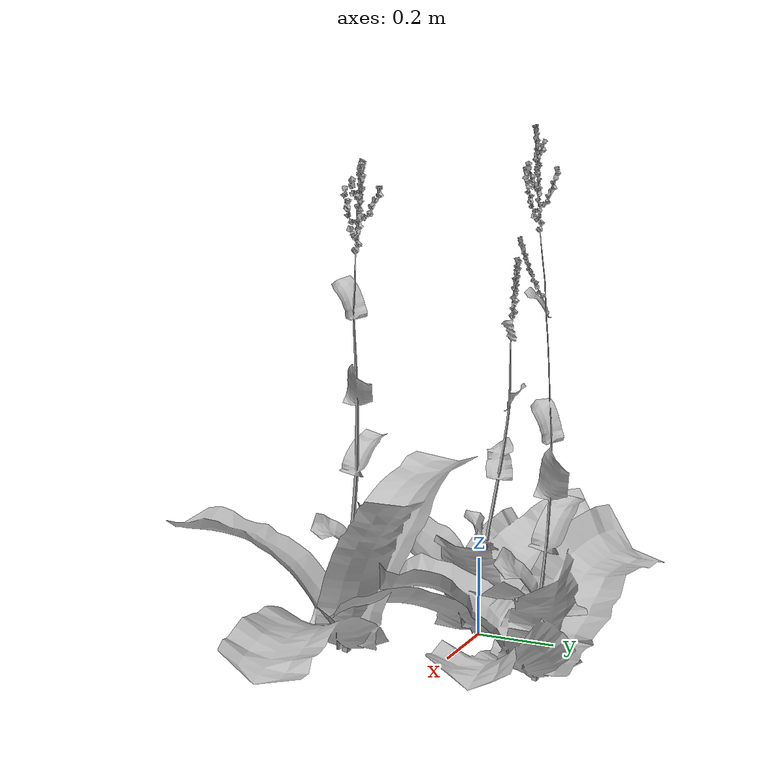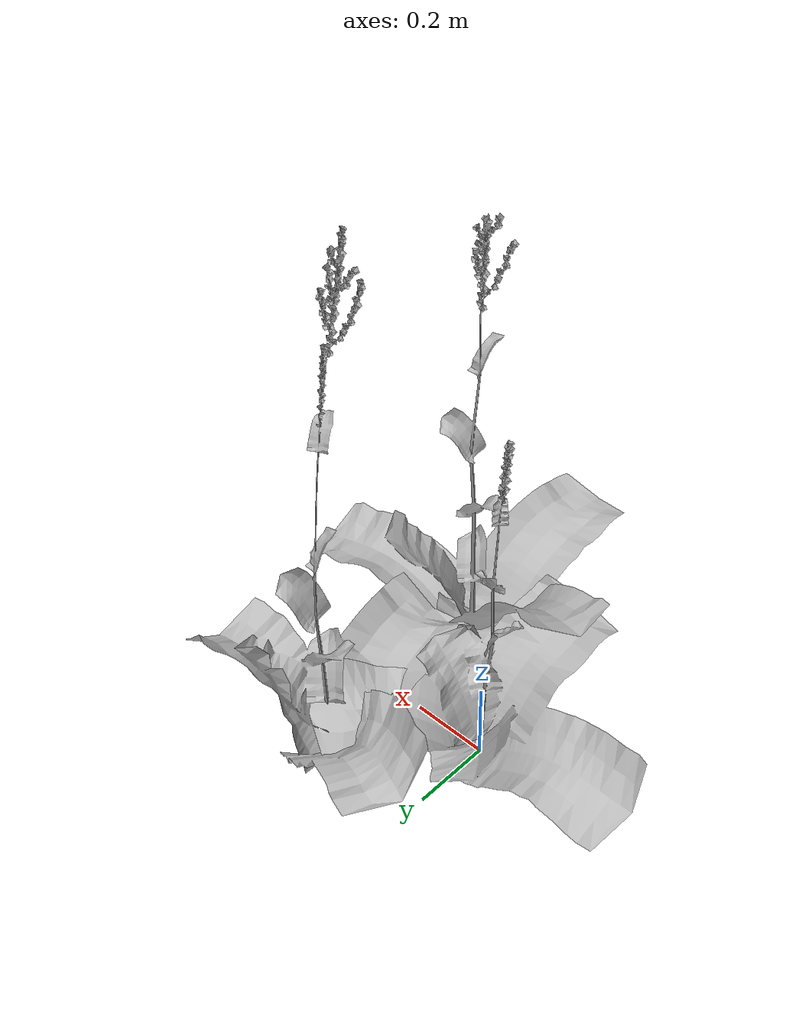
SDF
<?xml version="1.0" ?>
<sdf version="1.6">
  <model name="weed6">
    <static>1</static>
    <link name="link">

      <visual name="weed6_1">
        <geometry>
          <mesh>
            <uri>model://weed6/meshes/GC16_1.obj</uri>
          </mesh>
        </geometry>
        <cast_shadows>1</cast_shadows>
      </visual>
        <pose>0 0 0 0 0 0</pose>
    </link>
    <link name="weed6_2">

      <visual name="weed6_2">
        <geometry>
          <mesh>
            <uri>model://weed6/meshes/GC16_2.obj</uri>
          </mesh>
        </geometry>
        <cast_shadows>1</cast_shadows>
      </visual>
        <pose>0.25 -0.25 0 0 0 0</pose>
    </link>
    <link name="weed6_3">

      <visual name="weed6_3">
        <geometry>
          <mesh>
            <uri>model://weed6/meshes/GC16_3.obj</uri>
          </mesh>
        </geometry>
        <cast_shadows>1</cast_shadows>
      </visual>
        <pose>0.25 0.25 0 0 0 0</pose>
    </link>
  </model>

</sdf>
